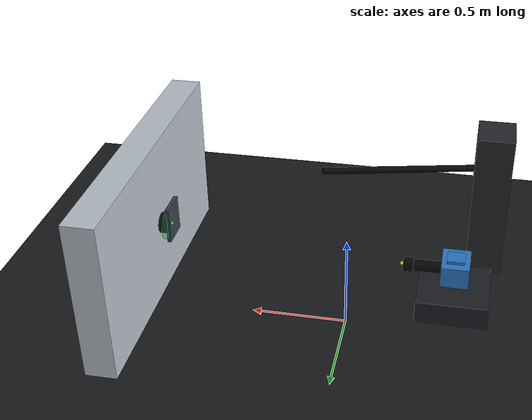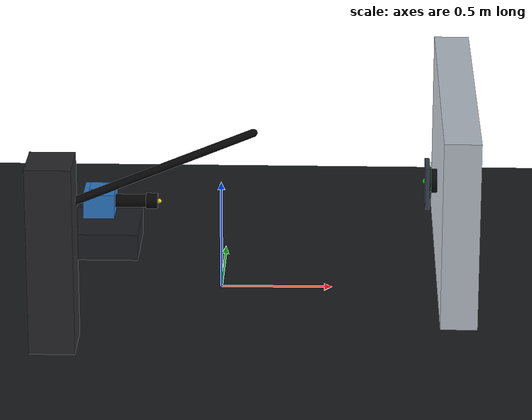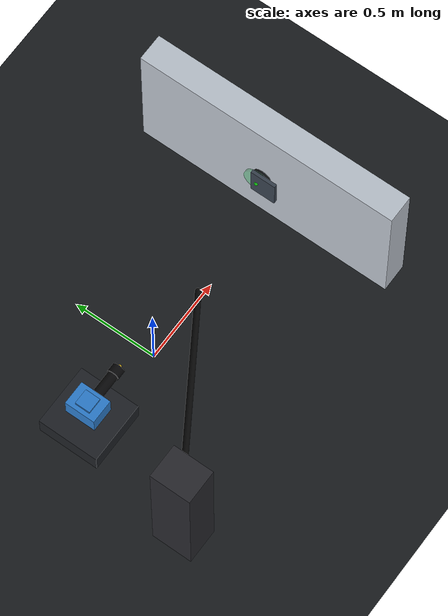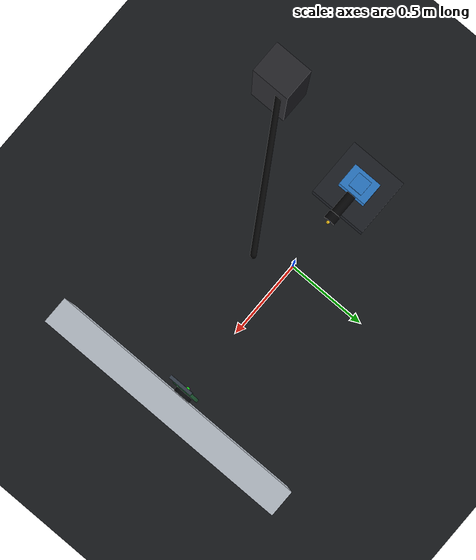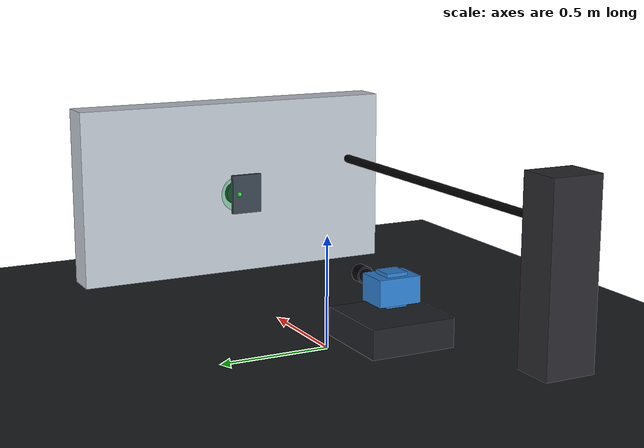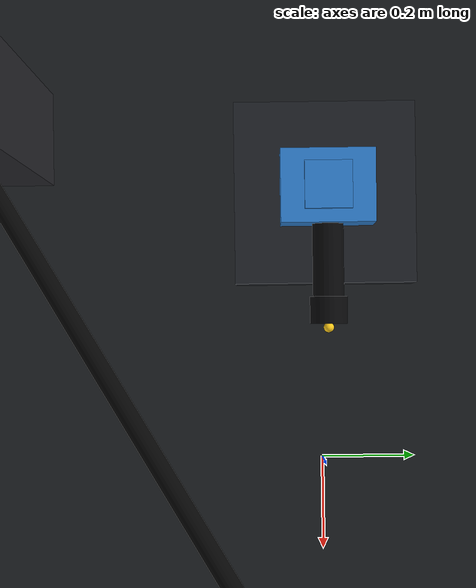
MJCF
<mujoco model="chargemate_ev_charging">
  <compiler angle="radian" coordinate="local" autolimits="true"/>
  <option timestep="0.004" gravity="0 0 -9.81" integrator="RK4"/>

  <default>
    <geom solref="0.008 1" solimp="0.92 0.98 0.002" friction="1.0 0.08 0.02"/>
    <joint damping="8" armature="0.03"/>
    <position kp="650" kv="45" forcerange="-450 450"/>
  </default>

  <asset>
    <material name="floor" rgba="0.10 0.11 0.12 1"/>
    <material name="robot" rgba="0.18 0.50 0.82 1"/>
    <material name="ev" rgba="0.75 0.78 0.82 1"/>
    <material name="port" rgba="0.04 0.05 0.06 1"/>
    <material name="plug" rgba="0.03 0.03 0.035 1"/>
    <material name="door" rgba="0.22 0.26 0.31 1"/>
    <material name="target" rgba="0.15 0.8 0.35 0.35"/>
  </asset>

  <worldbody>
    <light name="key" pos="-2.2 -3.0 4.0" dir="1 1 -2" diffuse="0.8 0.8 0.8"/>
    <geom name="floor" type="plane" pos="0 0 0" size="4 4 0.05" material="floor"/>

    <body name="ev_body" pos="1.05 0 0.54">
      <geom name="ev_side_panel" type="box" size="0.08 0.78 0.42" material="ev" contype="1" conaffinity="1"/>
      <geom name="charge_socket" type="cylinder" pos="-0.091 0.00976 -0.02362" euler="0 1.5708 -0.02025" size="0.054 0.018" material="port" contype="1" conaffinity="1"/>
      <geom name="socket_funnel" type="cylinder" pos="-0.118 0.00976 -0.02362" euler="0 1.5708 -0.02025" size="0.085 0.010" material="target" contype="1" conaffinity="1"/>
      <site name="port_center" pos="-0.132 0.00976 -0.02362" euler="0 1.5708 -0.02025" size="0.012" rgba="0.1 1 0.1 1"/>
      <body name="charge_door" pos="-0.125 -0.08524 -0.02362">
        <joint name="door_hinge" type="hinge" axis="0 0 1" range="0 1.35" damping="1.8"/>
        <geom name="charge_door_panel" type="box" pos="0 0.055 0" size="0.010 0.075 0.095" material="door" contype="0" conaffinity="0"/>
      </body>
    </body>

    <body name="cable_anchor" pos="-0.70 -0.70 0.42">
      <geom name="charger_pedestal" type="box" size="0.10 0.12 0.42" rgba="0.16 0.16 0.18 1"/>
      <geom name="cable_hint" type="capsule" fromto="0 0 0.20 0.85 0.52 0.38" size="0.018" rgba="0.02 0.02 0.02 1" contype="0" conaffinity="0"/>
    </body>

    <body name="robot_base" pos="-0.55 0 0.25">
      <geom name="base" type="box" size="0.18 0.18 0.06" rgba="0.12 0.13 0.15 1" contype="0" conaffinity="0"/>
      <body name="slide_x" pos="0 0 0.16">
        <joint name="x_slide" type="slide" axis="1 0 0" range="-0.05 1.35"/>
        <geom name="x_carriage" type="box" size="0.07 0.09 0.055" material="robot" contype="0" conaffinity="0"/>
        <body name="slide_y">
          <joint name="y_slide" type="slide" axis="0 1 0" range="-0.70 0.70"/>
          <geom name="y_carriage" type="box" size="0.055 0.07 0.050" material="robot" contype="0" conaffinity="0"/>
          <body name="slide_z">
            <joint name="z_slide" type="slide" axis="0 0 1" range="-0.16 0.68"/>
            <geom name="z_carriage" type="box" size="0.045 0.045 0.07" material="robot" contype="0" conaffinity="0"/>
            <body name="wrist_yaw">
              <joint name="yaw" type="hinge" axis="0 0 1" range="-0.55 0.55"/>
              <geom name="yaw_hub" type="sphere" size="0.055" material="robot" contype="0" conaffinity="0"/>
              <body name="wrist_pitch">
                <joint name="pitch" type="hinge" axis="0 1 0" range="-0.35 0.35"/>
                <geom name="pitch_hub" type="sphere" size="0.043" material="robot" contype="0" conaffinity="0"/>
                <body name="plug" pos="0.11 0 0">
                  <geom name="plug_body" type="capsule" fromto="-0.10 0 0 0.10 0 0" size="0.030" material="plug" contype="1" conaffinity="1"/>
                  <geom name="plug_tip" type="cylinder" pos="0.125 0 0" euler="0 1.5708 0" size="0.036 0.026" material="plug" contype="1" conaffinity="1"/>
                  <site name="plug_tip_site" pos="0.158 0 0" size="0.010" rgba="1 0.8 0.1 1"/>
                  <site name="plug_grip_site" pos="-0.045 0 0" size="0.010" rgba="0.2 0.6 1 1"/>
                </body>
              </body>
            </body>
          </body>
        </body>
      </body>
    </body>
  </worldbody>

  <actuator>
    <position name="x_act" joint="x_slide"/>
    <position name="y_act" joint="y_slide"/>
    <position name="z_act" joint="z_slide"/>
    <position name="yaw_act" joint="yaw" kp="280" kv="30"/>
    <position name="pitch_act" joint="pitch" kp="280" kv="30"/>
    <position name="door_act" joint="door_hinge" kp="180" kv="12" forcerange="-40 40"/>
  </actuator>

  <sensor>
    <jointpos name="door_angle" joint="door_hinge"/>
    <jointpos name="x_pos" joint="x_slide"/>
    <jointpos name="y_pos" joint="y_slide"/>
    <jointpos name="z_pos" joint="z_slide"/>
    <framepos name="plug_tip_pos" objtype="site" objname="plug_tip_site"/>
    <framepos name="port_center_pos" objtype="site" objname="port_center"/>
  </sensor>
</mujoco>
